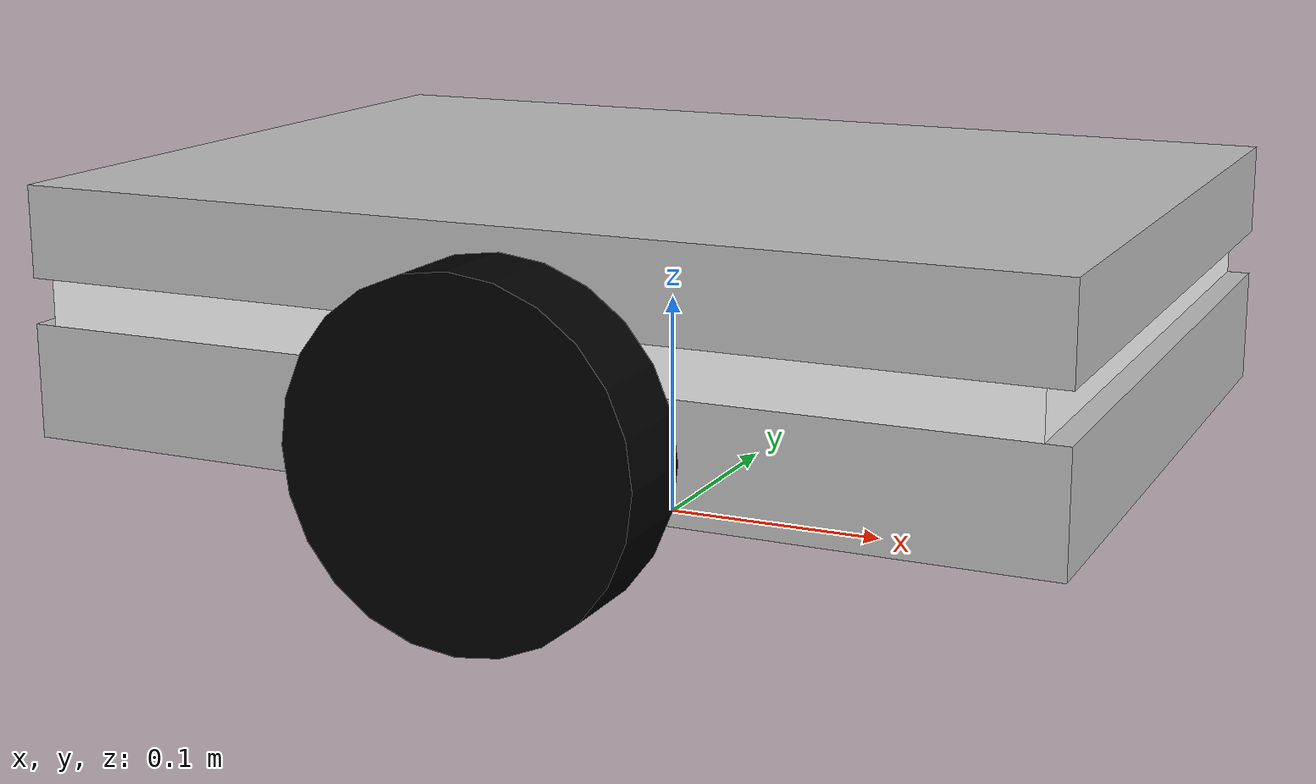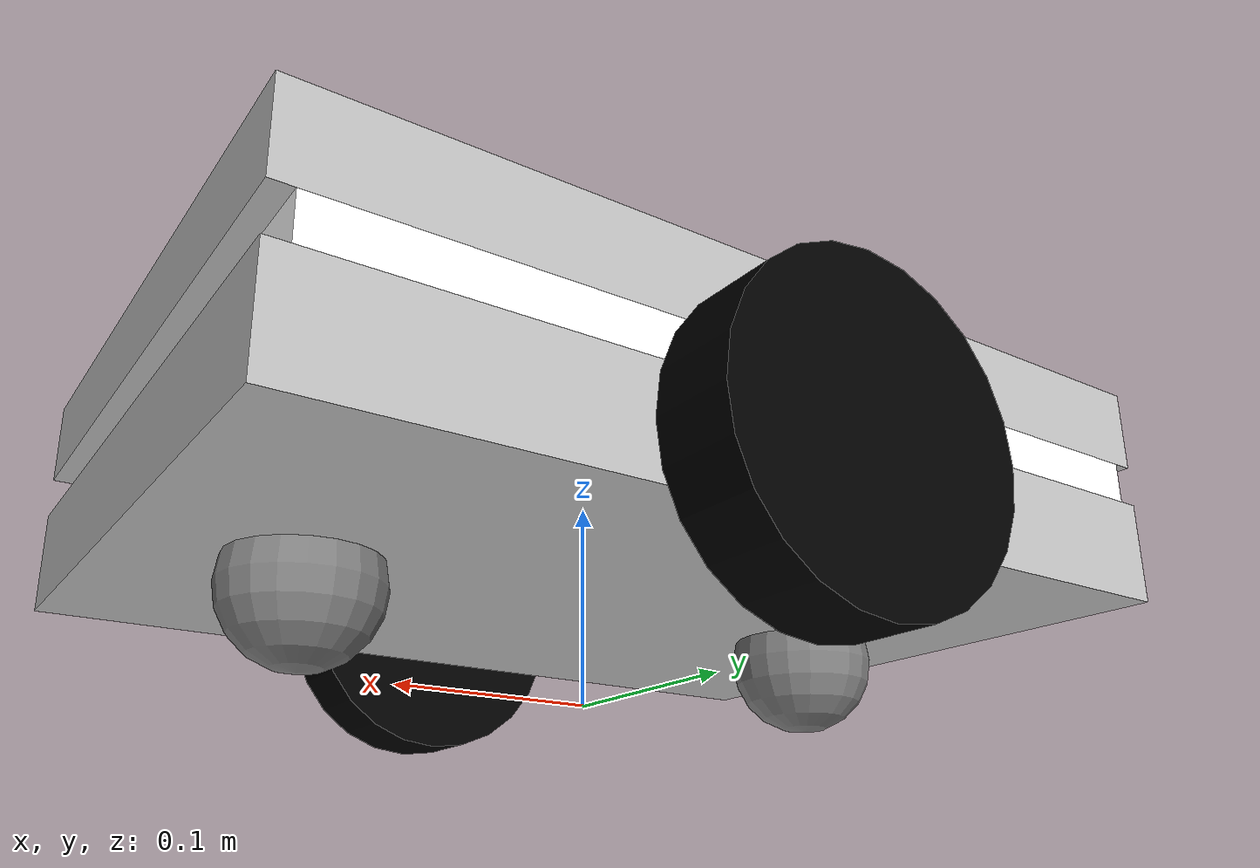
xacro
<?xml version="1.0"?>
<robot xmlns:xacro = "http://www.ros.org/wiki/xacro" name="robot">

    <material name="white">
        <color rgba="1.0 1.0 1.0 1.0"/>
    </material>

    <material name="orange">
        <color rgba="1.0 0.3 0.1 1.0"/>
    </material>

    <material name="blue">
        <color rgba="0.2 0.2 1.0 1.0"/>
    </material>

    <material name="black">
        <color rgba="0 0 0 1.0"/>
    </material>

    <material name="silver">
        <color rgba="0.75 0.75 0.75 1.0"/>
    </material>

    <material name="grey">
        <color rgba="0.5 0.5 0.5 1.0"/>
    </material>

    <!-- BASE LINK -->

    <link name="base_link">
        <origin xyz="0.0 0.0 0.0"/>
    </link>

    <!-- CHASSIS -->

    <joint name="base_to_chassis1" type="fixed">
        <parent link="base_link"/>
        <child link="chassis_1"/>
        <origin xyz="0 0 0.075"/>
    </joint>

    <link name="chassis_1">
        <visual>
            <origin xyz="0 0 0.0"/>
            <geometry>
                <box size="0.45 0.32 0.05"/>
            </geometry>
            <material name="silver"/>
        </visual>
        <collision>
            <origin xyz="0 0 0.0"/>
            <geometry>
                <box size="0.45 0.32 0.05"/>
            </geometry>
        </collision>
        <inertial>
            <mass value="7.49"/>
            <origin xyz="0 0 0"/>
            <inertia ixx="0.0649" ixy="0" ixz="0" iyy="0.1433" iyz="0" izz="0.1926"/>
        </inertial>
    </link>

    <joint name="chassis1_to_chassis2" type="fixed">
        <parent link="chassis_1"/>
        <child link="chassis_2"/>
        <origin xyz="0 0 0.035"/>
    </joint>

    <link name="chassis_2">
        <visual>
            <origin xyz="0 0 0.0"/>
            <geometry>
                <box size="0.43 0.32 0.02"/>
            </geometry>
            <material name="white"/>
        </visual>
        <collision>
            <origin xyz="0 0 0.0"/>
            <geometry>
                <box size="0.43 0.32 0.02"/>
            </geometry>
        </collision>
        <inertial>
            <mass value="2.86"/>
            <origin xyz="0 0 0"/>
            <inertia ixx="0.0244" ixy="0" ixz="0" iyy="0.0441" iyz="0" izz="0.0686"/>
        </inertial>
    </link>

    <joint name="chassis2_to_chassis3" type="fixed">
        <parent link="chassis_2"/>
        <child link="chassis_3"/>
        <origin xyz="0 0 0.03"/>
    </joint>

    <link name="chassis_3">
        <visual>
            <origin xyz="0 0 0.0"/>
            <geometry>
                <box size="0.45 0.32 0.04"/>
            </geometry>
            <material name="silver"/>
        </visual>
        <collision>
            <origin xyz="0 0 0.0"/>
            <geometry>
                <box size="0.45 0.32 0.04"/>
            </geometry>
        </collision>
        <inertial>
            <mass value="5.99"/>
            <origin xyz="0 0 0"/>
            <inertia ixx="0.0517" ixy="0" ixz="0" iyy="0.1017" iyz="0" izz="0.1515"/>
        </inertial>
    </link>

    <!-- DRIVE WHEELS -->

    <!-- LEFT WHEEL LINK -->

    <joint name="left_wheel_joint" type="continuous">
        <parent link="base_link"/>
        <child link="left_wheel"/>
        <origin xyz="0.0 0.18 0.075" rpy="-${pi/2} 0.0 0.0"/>
        <axis xyz="0.0 0.0 1.0"/>
    </joint>

    <link name="left_wheel">
        <visual>
            <origin xyz="0.0 0.0 0.0"/>
            <geometry>
                <cylinder radius="0.075" length="0.04"/>
            </geometry>
            <material name="black"/>
        </visual>
        <collision>
            <origin xyz="0.0 0.0 0.0"/>
            <geometry>
                <cylinder radius="0.075" length="0.04"/>
            </geometry>
        </collision>
        <inertial>
            <mass value="1.06"/>
            <origin xyz="0 0 0"/>
            <inertia ixx="0.0026" ixy="0" ixz="0" iyy="0.0026" iyz="0" izz="0.00297"/>
        </inertial>
    </link>

    <!-- RIGHT WHEEL LINK -->

    <joint name="right_wheel_joint" type="continuous">
        <parent link="base_link"/>
        <child link="right_wheel"/>
        <origin xyz="0.0 -0.18 0.075" rpy="${pi/2} 0.0 0.0"/>
        <axis xyz="0.0 0.0 -1.0"/>
    </joint>

    <link name="right_wheel">
        <visual>
            <origin xyz="0.0 0.0 0.0"/>
            <geometry>
                <cylinder radius="0.075" length="0.04"/>
            </geometry>
            <material name="black"/>
        </visual>
        <collision>
            <origin xyz="0.0 0.0 0.0"/>
            <geometry>
                <cylinder radius="0.075" length="0.04"/>
            </geometry>
        </collision>
        <inertial>
            <mass value="1.06"/>
            <origin xyz="0 0 0"/>
            <inertia ixx="0.0026" ixy="0" ixz="0" iyy="0.0026" iyz="0" izz="0.00297"/>
        </inertial>
    </link>

    <!-- CASTER WHEEL LINK -->

    <joint name="caster_wheel_joint1" type="fixed">
        <parent link="chassis_1"/>
        <child link="front_caster_wheel"/>
        <origin xyz="0.145 0.0 -0.0375"/>
        <axis xyz="0.0 0.0 0.0"/>
    </joint>

    <link name="front_caster_wheel">
        <visual>
            <origin xyz="0.0 0.0 0.0"/>
            <geometry>
                <sphere radius="0.0375"/>
            </geometry>
            <material name="grey"/>
        </visual>
        <collision>
            <origin xyz="0.0 0.0 0.0"/>
            <geometry>
                <sphere radius="0.0375"/>
            </geometry>
            <material name="grey"/>
        </collision>
        <inertial>
            <mass value="0.33"/>
            <origin xyz="0 0 0"/>
            <inertia ixx="0.00037" ixy="0" ixz="0" iyy="0.00037" iyz="0" izz="0.00037"/>
        </inertial>
    </link>

    <joint name="caster_wheel_joint2" type="fixed">
        <parent link="chassis_1"/>
        <child link="back_caster_wheel"/>
        <origin xyz="-0.145 0.0 -0.0375"/>
        <axis xyz="0.0 0.0 0.0"/>
    </joint>

    <link name="back_caster_wheel">
        <visual>
            <origin xyz="0.0 0.0 0.0"/>
            <geometry>
                <sphere radius="0.0375"/>
            </geometry>
            <material name="grey"/>
        </visual>
        <collision>
            <origin xyz="0.0 0.0 0.0"/>
            <geometry>
                <sphere radius="0.0375"/>
            </geometry>
        </collision>
        <inertial>
            <mass value="0.33"/>
            <origin xyz="0 0 0"/>
            <inertia ixx="0.00037" ixy="0" ixz="0" iyy="0.00037" iyz="0" izz="0.00037"/>
        </inertial>
    </link>

</robot>
